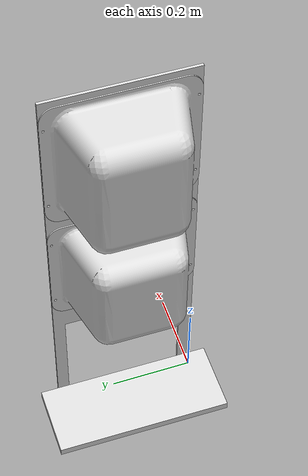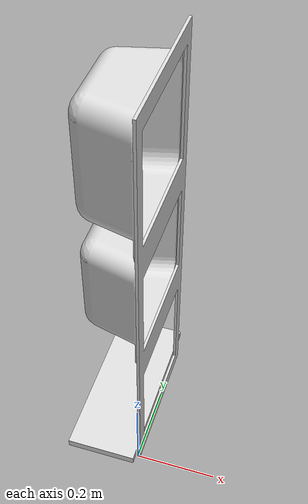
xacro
<?xml version="1.0"?>
<robot xmlns:xacro="http://wiki.ros.org/xacro" name="trainer_front_left_face">
  <xacro:arg name="prefix" default=""/>
  <xacro:property name="shelf" default="true"/>

  <xacro:include filename="$(find trainer)/urdf/colors.xacro"/>

  <link name="world"/>

  <xacro:include filename="$(find trainer)/urdf/trainer_front_left_face.xacro"/>
  <xacro:trainer_front_left_face prefix="$(arg prefix)" parent="world" shelf="${shelf}">
    <origin xyz="0.0 0.0 0.0" rpy="0 0 0"/>
  </xacro:trainer_front_left_face>

</robot>

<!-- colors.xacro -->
<robot xmlns:xacro="http://wiki.ros.org/xacro" name="trainer_side">

  <material name="red">
    <color rgba="1.0 0 0 1"/>
  </material>

  <material name="green">
    <color rgba="0 1.0 0 1"/>
  </material>

  <material name="blue">
    <color rgba="0 0 1.0 1"/>
  </material>

  <material name="gray">
    <color rgba="0.85 0.85 0.85 1.0"/>
  </material>

  <material name="white">
    <color rgba="1.0 1.0 1.0 1.0"/>
  </material>

</robot>

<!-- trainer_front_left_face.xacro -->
<robot xmlns:xacro="http://wiki.ros.org/xacro">

  <xacro:macro name="trainer_front_left_face" params="
    prefix:=''
    parent:=''
    *origin
    shelf:='true'">

  <joint name="${prefix}trainer_front_left_face_joint" type="fixed">
    <parent link="${parent}"/>
    <child link="${prefix}front_left_face"/>
    <xacro:insert_block name="origin"/>
  </joint>

  <link name="${prefix}front_left_face">
    <!--TODO set proper inertia-->
    <inertial>
      <origin rpy="0 0 0" xyz="0.0 0.0 0.0"/>
      <mass value="0.1"/>
      <inertia ixx="0.1" ixy="0.0" ixz="0.0" iyy="0.1" iyz="0.0" izz="0.1"/>
    </inertial>
    <visual>
      <origin xyz="0.0 0.0 0.0" rpy="0 0 0"/>
      <geometry>
        <mesh filename="package://trainer/meshes/visual/front_left_face.stl"/>
      </geometry>
      <material name="gray"/>
    </visual>
    <collision>
      <origin xyz="0.0 0.0 0.0" rpy="0 0 0"/>
      <geometry>
        <mesh filename="package://trainer/meshes/collision/front_left_face.stl"/>
      </geometry>
      <material name="red"/>
    </collision>
  </link>

  <joint name="${prefix}cubby_1_joint" type="fixed">
    <parent link="${prefix}front_left_face"/>
    <child link="${prefix}cubby_1"/>
    <origin xyz="0.0 0.0 0.525" rpy="0 0 0"/>
  </joint>

  <link name="${prefix}cubby_1">
    <!--TODO set proper inertia-->
    <inertial>
      <origin rpy="0 0 0" xyz="0.0 0.0 0.0"/>
      <mass value="0.1"/>
      <inertia ixx="0.1" ixy="0.0" ixz="0.0" iyy="0.1" iyz="0.0" izz="0.1"/>
    </inertial>
    <visual>
      <origin xyz="0.0 0.0 0.0" rpy="0 0 0"/>
      <geometry>
        <mesh filename="package://trainer/meshes/visual/cubby_1.stl"/>
      </geometry>
      <material name="gray"/>
    </visual>
    <collision>
      <origin xyz="0.0 0.0 0.0" rpy="0 0 0"/>
      <geometry>
        <mesh filename="package://trainer/meshes/collision/cubby_1.stl"/>
      </geometry>
      <material name="red"/>
    </collision>
  </link>

  <joint name="${prefix}cubby_2_joint" type="fixed">
    <parent link="${prefix}front_left_face"/>
    <child link="${prefix}cubby_2"/>
    <origin xyz="0.0 0.0 0.875" rpy="0 0 0"/>
  </joint>

  <link name="${prefix}cubby_2">
    <!--TODO set proper inertia-->
    <inertial>
      <origin rpy="0 0 0" xyz="0.0 0.0 0.0"/>
      <mass value="0.1"/>
      <inertia ixx="0.1" ixy="0.0" ixz="0.0" iyy="0.1" iyz="0.0" izz="0.1"/>
    </inertial>
    <visual>
      <origin xyz="0.0 0.0 0.0" rpy="0 0 0"/>
      <geometry>
        <mesh filename="package://trainer/meshes/visual/cubby_2.stl"/>
      </geometry>
      <material name="gray"/>
    </visual>
    <collision>
      <origin xyz="0.0 0.0 0.0" rpy="0 0 0"/>
      <geometry>
        <mesh filename="package://trainer/meshes/collision/cubby_2.stl"/>
      </geometry>
      <material name="red"/>
    </collision>
  </link>

  <xacro:if value="${shelf}">
    <joint name="${prefix}trainer_cubby_shelf_joint" type="fixed">
      <parent link="${prefix}front_left_face"/>
      <child link="${prefix}cubby_shelf"/>
      <origin xyz="-0.173 -0.04 0.031" rpy="0 0 0"/>
    </joint>

    <link name="${prefix}cubby_shelf">
      <!--TODO set proper inertia-->
      <inertial>
        <origin rpy="0 0 0" xyz="0.0 0.0 0.0"/>
        <mass value="0.1"/>
        <inertia ixx="0.1" ixy="0.0" ixz="0.0" iyy="0.1" iyz="0.0" izz="0.1"/>
      </inertial>
      <visual>
        <origin xyz="${0.173/2} ${0.428/2} ${0.02/2}" rpy="0 0 0"/>
        <geometry>
          <box size="0.173 0.428 0.02"/>
        </geometry>
        <material name="gray"/>
      </visual>
      <collision>
        <origin xyz="${0.173/2} ${0.428/2} ${0.02/2}" rpy="0 0 0"/>
        <geometry>
          <box size="0.173 0.428 0.02"/>
        </geometry>
        <material name="red"/>
      </collision>
    </link>
  </xacro:if>

  </xacro:macro>
</robot>
